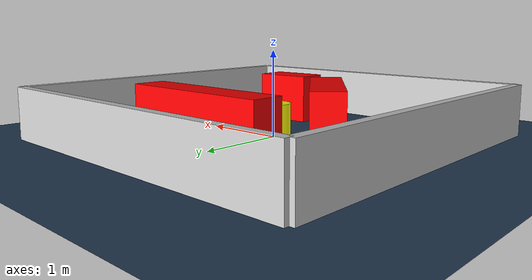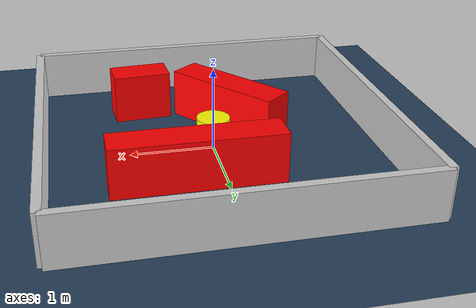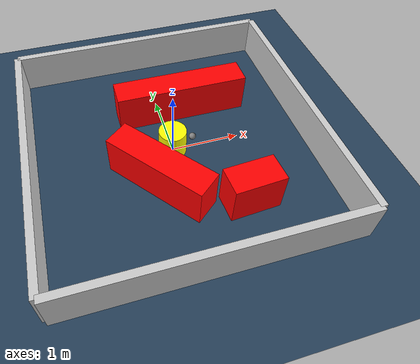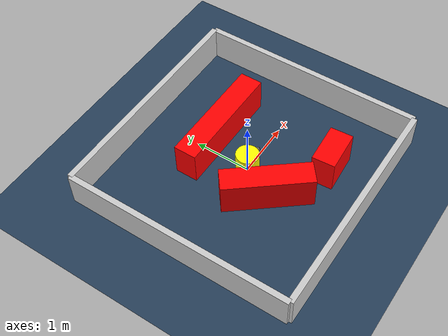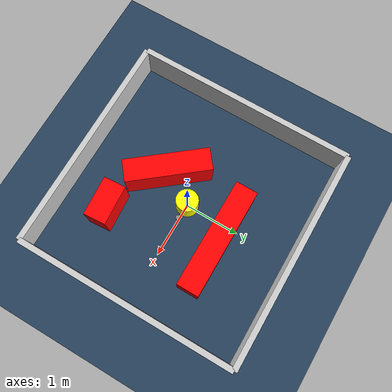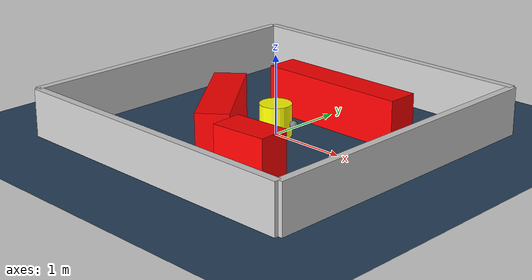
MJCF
<?xml version="1.0" ?>
<mujoco model="generated_environment">
  <option timestep="0.01" integrator="RK4" cone="elliptic"/>
  <default>
    <geom density="1"/>
  </default>
  <asset>
    <texture builtin="gradient" height="3072" rgb1="0.3 0.5 0.7" rgb2="0 0 0" type="skybox" width="512"/>
    <texture builtin="checker" height="300" mark="edge" markrgb="0.8 0.8 0.8" name="groundplane" rgb1="0.2 0.3 0.4" rgb2="0.1 0.2 0.3" type="2d" width="300"/>
    <material name="groundplane" reflectance="0.2" texrepeat="5 5" texture="groundplane" texuniform="true"/>
    <material name="robot" rgba="0.0 1.0 0.0 1"/>
  </asset>
  <worldbody>
    <light dir="0 0 -1" directional="true" pos="0 0 1.5"/>
    <geom condim="4" friction="1.0 0.005 0.001" material="groundplane" name="floor" size="0 0 0.05" type="plane"/>
    <body name="walls">
      <geom name="wall_1" condim="4" pos="-2.0 0.0 0.3" rgba="0.800000011920929 0.800000011920929 0.800000011920929 1.0" size="0.05 2.0 0.3" type="box"/>
      <geom name="wall_2" condim="4" pos="2.0 0.0 0.3" rgba="0.800000011920929 0.800000011920929 0.800000011920929 1.0" size="0.05 2.0 0.3" type="box"/>
      <geom name="wall_3" condim="4" pos="0.0 -2.0 0.3" rgba="0.800000011920929 0.800000011920929 0.800000011920929 1.0" size="2.0 0.05 0.3" type="box"/>
      <geom name="wall_4" condim="4" pos="0.0 2.0 0.3" rgba="0.800000011920929 0.800000011920929 0.800000011920929 1.0" size="2.0 0.05 0.3" type="box"/>
    </body>
    <body name="robot">
      <joint name="joint_x" type="slide" pos="0 0 0" axis="1 0 0"/>
      <joint name="joint_y" type="slide" pos="0 0 0" axis="0 1 0"/>
      <geom name="robot" type="sphere" pos="0.3 0.0 0.2" size="0.05" mass="5." friction="1.0 0.005 0.0001" condim="4" rgba="0.5 0.5 0.5 1.0"/>
      <site name="sensor_ball"/>
    </body>
    <body name="obstacle_movable_1">
      <geom name="obstacle_movable_1" condim="4" pos="0.0 0.0 0.2" euler="0 0 0.0" friction="1.0 0.005 0.001" rgba="1.0 1.0 0.0 1.0" size="0.2 0.2 0.0" type="cylinder" mass="0.1"/>
      <joint type="free"/>
    </body>
    <body name="obstacle_2_static">
      <geom name="obstacle_2_static" condim="4" pos="0.3325342382652752 0.7738774062903959 0.3" euler="0 0 359.8563648826708" friction="1.0 0.005 0.001" rgba="1 0 0 1" size="0.9849082307350425 0.2 0.3" type="box"/>
    </body>
    <body name="obstacle_3_static">
      <geom name="obstacle_3_static" condim="4" pos="0.738079998954575 -1.1526021593546534 0.3" euler="0 0 3.823964211407662" friction="1.0 0.005 0.001" rgba="1 0 0 1" size="0.35626517436555316 0.2 0.3" type="box"/>
    </body>
    <body name="obstacle_4_static">
      <geom name="obstacle_4_static" condim="4" pos="-0.3237951393348104 -0.57670198078136 0.3" euler="0 0 128.66081676593433" friction="1.0 0.005 0.001" rgba="1 0 0 1" size="0.7548802276500998 0.2 0.3" type="box"/>
    </body>
  </worldbody>
  <actuator>
    <motor name="actuator_x" joint="joint_x" gear="1" ctrlrange="-1 1"/>
    <motor name="actuator_y" joint="joint_y" gear="1" ctrlrange="-1 1"/>
  </actuator>
</mujoco>
